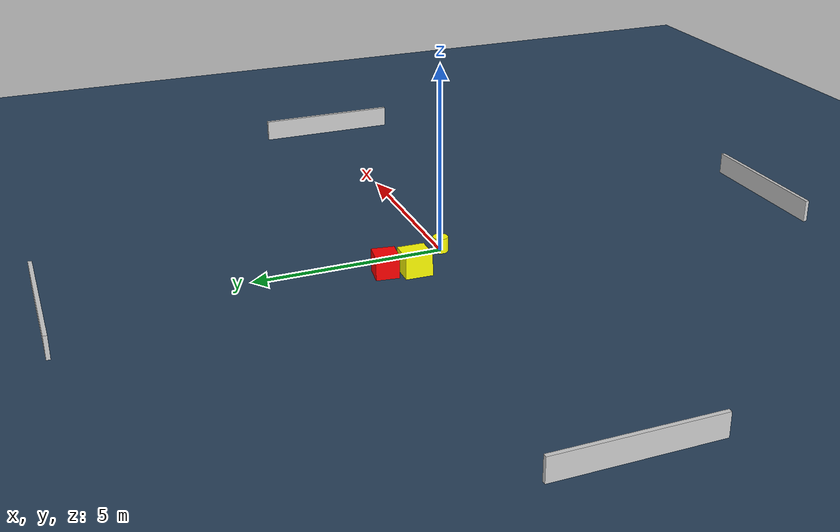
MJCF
<?xml version="1.0" ?>
<mujoco model="generated_environment">
  <option timestep="0.01" integrator="RK4" cone="elliptic"/>
  <default>
    <geom density="1"/>
  </default>
  <asset>
    <texture builtin="gradient" height="3072" name="skybox" rgb1="0.3 0.5 0.7" rgb2="0 0 0" type="skybox" width="512"/>
    <texture builtin="checker" height="300" name="groundplane" rgb1="0.2 0.3 0.4" rgb2="0.1 0.2 0.3" type="2d" width="300"/>
    <material name="groundplane" reflectance="0.2" texrepeat="5 5" texture="groundplane"/>
  </asset>
  <worldbody>
    <light dir="0 0 -1" directional="true" pos="0 0 1.5"/>
    <geom condim="3" friction="0.5 0.005 0.001" material="groundplane" name="floor" pos="0 0 0" size="0 0 0.05" type="plane"/>
    <body name="walls">
      <geom name="wall_1" condim="4" pos="-10.0 0.0 0.3" rgba="0.800000011920929 0.800000011920929 0.800000011920929 1.0" size="0.05 2.0 0.3" type="box"/>
      <geom name="wall_2" condim="4" pos="10.0 0.0 0.3" rgba="0.800000011920929 0.800000011920929 0.800000011920929 1.0" size="0.05 2.0 0.3" type="box"/>
      <geom name="wall_3" condim="4" pos="0.0 -10.0 0.3" rgba="0.800000011920929 0.800000011920929 0.800000011920929 1.0" size="2.0 0.05 0.3" type="box"/>
      <geom name="wall_4" condim="4" pos="0.0 10.0 0.3" rgba="0.800000011920929 0.800000011920929 0.800000011920929 1.0" size="2.0 0.05 0.3" type="box"/>
    </body>
    <body name="robot">
      <joint name="joint_x" type="slide" pos="0 0 0" axis="1 0 0"/>
      <joint name="joint_y" type="slide" pos="0 0 0" axis="0 1 0"/>
      <geom name="robot" type="cylinder" pos="0.0 0.0 0.2" size="0.2 0.2 0.0" mass="5.0" friction="1.0 0.005 0.0001" condim="4" rgba="1.0 1.0 0.0 1.0"/>
    </body>
    <body name="obstacle_1_movable">
      <geom name="obstacle_1_movable" condim="4" pos="-0.9382233409252392 1.067284011832538 0.3" euler="0 0 358.8462141905444" friction="0.0 0.005 0.001" rgba="1.0 1.0 0.0 1.0" size="0.33639682999892584 0.35560213890464965 0.3" type="box" mass="0.1"/>
      <joint type="free"/>
    </body>
    <body name="obstacle_2_static">
      <geom name="obstacle_2_static" condim="4" pos="-0.7807987470149702 1.794001750920406 0.3" euler="0 0 352.52164819263476" friction="0.0 0.005 0.001" rgba="1.0 0.0 0.0 1.0" size="0.3037409531764505 0.30056232983144177 0.3" type="box"/>
    </body>
  </worldbody>
  <actuator>
    <motor name="actuator_x" joint="joint_x" gear="1" ctrlrange="-1 1"/>
    <motor name="actuator_y" joint="joint_y" gear="1" ctrlrange="-1 1"/>
  </actuator>
</mujoco>
